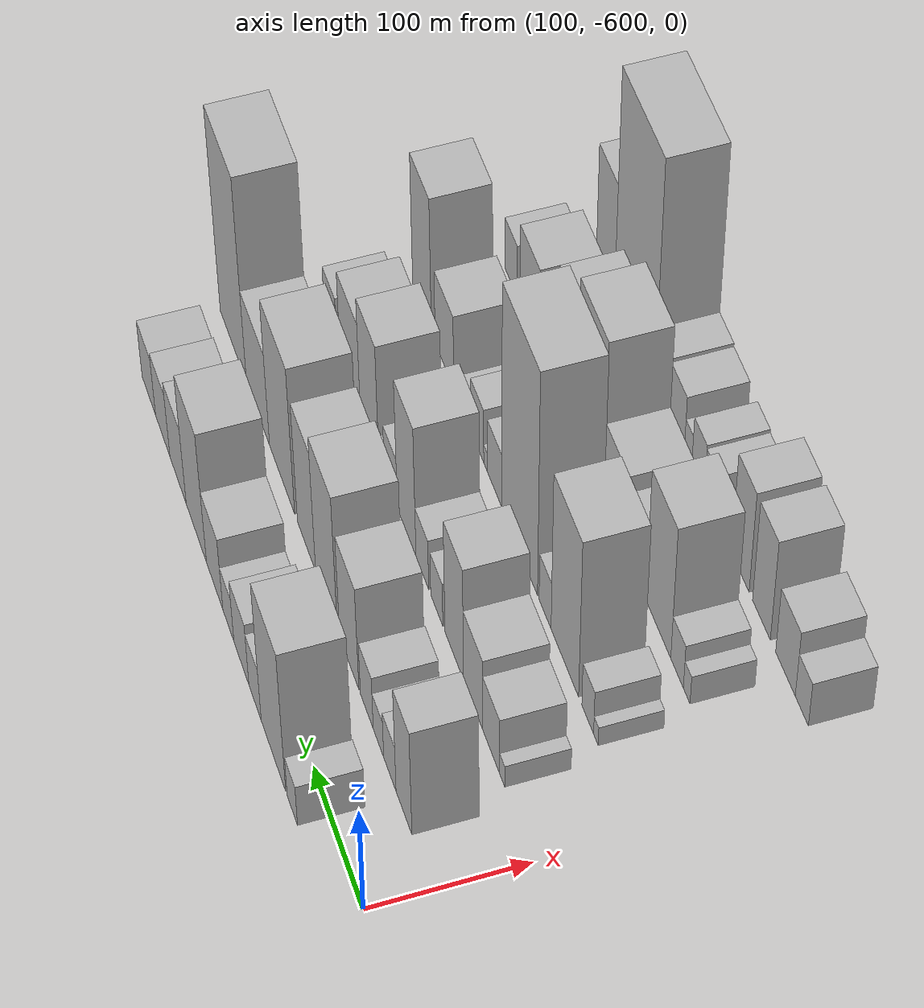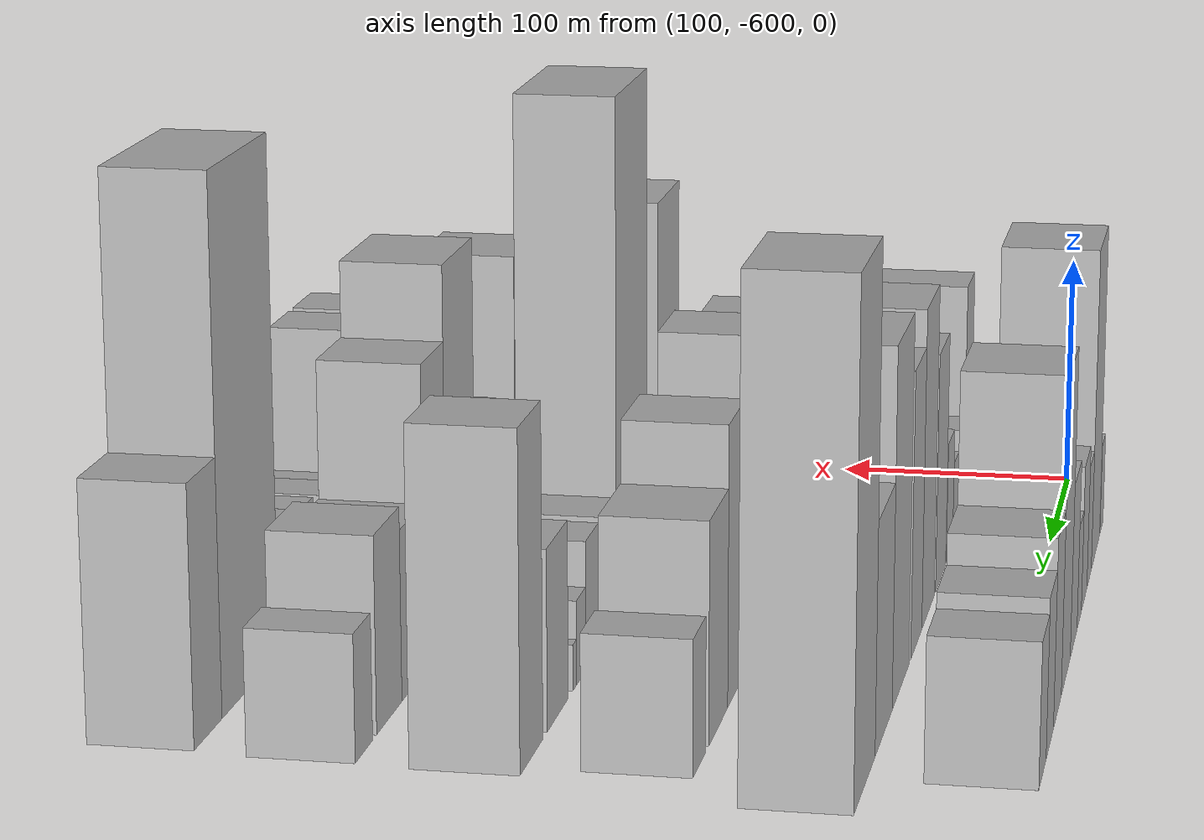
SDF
<sdf version="1.6">
 <world name="default">
  <model name="building_12">
   <static>1</static>
   <pose>100.0000 -524.8343 0 0.000000 0.000000 0.000000</pose>
   <link name="link">
    <pose>0 0 19.50 0 0 0</pose>
    <collision name="collision"><geometry><box><size>40.0000 21.1568 39.0000</size></box></geometry></collision>
    <visual name="visual">
     <cast_shadows>0</cast_shadows>
     <geometry><box><size>40.0000 21.1568 39.0000</size></box></geometry>
     <material>
      <script>
       <uri>model://HANNAS_wall/materials/scripts</uri>
       <uri>model://HANNAS_wall/materials/textures</uri>
       <name>vrc/HANNAS_wall</name>
      </script>
     </material>
    </visual>
   </link>
  </model>
  <model name="building_13">
   <static>1</static>
   <pose>100.0000 -485.7063 0 0.000000 0.000000 0.000000</pose>
   <link name="link">
    <pose>0 0 67.50 0 0 0</pose>
    <collision name="collision"><geometry><box><size>40.0000 51.0993 135.0000</size></box></geometry></collision>
    <visual name="visual">
     <cast_shadows>0</cast_shadows>
     <geometry><box><size>40.0000 51.0993 135.0000</size></box></geometry>
     <material>
      <script>
       <uri>model://HANNAS_wall/materials/scripts</uri>
       <uri>model://HANNAS_wall/materials/textures</uri>
       <name>vrc/HANNAS_wall</name>
      </script>
     </material>
    </visual>
   </link>
  </model>
  <model name="building_14">
   <static>1</static>
   <pose>100.0000 -447.0501 0 0.000000 0.000000 0.000000</pose>
   <link name="link">
    <pose>0 0 25.50 0 0 0</pose>
    <collision name="collision"><geometry><box><size>40.0000 26.2131 51.0000</size></box></geometry></collision>
    <visual name="visual">
     <cast_shadows>0</cast_shadows>
     <geometry><box><size>40.0000 26.2131 51.0000</size></box></geometry>
     <material>
      <script>
       <uri>model://HANNAS_wall/materials/scripts</uri>
       <uri>model://HANNAS_wall/materials/textures</uri>
       <name>vrc/HANNAS_wall</name>
      </script>
     </material>
    </visual>
   </link>
  </model>
  <model name="building_15">
   <static>1</static>
   <pose>100.0000 -417.6876 0 0.000000 0.000000 0.000000</pose>
   <link name="link">
    <pose>0 0 30.00 0 0 0</pose>
    <collision name="collision"><geometry><box><size>40.0000 32.5119 60.0000</size></box></geometry></collision>
    <visual name="visual">
     <cast_shadows>0</cast_shadows>
     <geometry><box><size>40.0000 32.5119 60.0000</size></box></geometry>
     <material>
      <script>
       <uri>model://HANNAS_wall/materials/scripts</uri>
       <uri>model://HANNAS_wall/materials/textures</uri>
       <name>vrc/HANNAS_wall</name>
      </script>
     </material>
    </visual>
   </link>
  </model>
  <model name="building_16">
   <static>1</static>
   <pose>100.0000 -389.3960 0 0.000000 0.000000 0.000000</pose>
   <link name="link">
    <pose>0 0 21.00 0 0 0</pose>
    <collision name="collision"><geometry><box><size>40.0000 24.0713 42.0000</size></box></geometry></collision>
    <visual name="visual">
     <cast_shadows>0</cast_shadows>
     <geometry><box><size>40.0000 24.0713 42.0000</size></box></geometry>
     <material>
      <script>
       <uri>model://HANNAS_wall/materials/scripts</uri>
       <uri>model://HANNAS_wall/materials/textures</uri>
       <name>vrc/HANNAS_wall</name>
      </script>
     </material>
    </visual>
   </link>
  </model>
  <model name="building_17">
   <static>1</static>
   <pose>100.0000 -359.1189 0 0.000000 0.000000 0.000000</pose>
   <link name="link">
    <pose>0 0 34.50 0 0 0</pose>
    <collision name="collision"><geometry><box><size>40.0000 36.4830 69.0000</size></box></geometry></collision>
    <visual name="visual">
     <cast_shadows>0</cast_shadows>
     <geometry><box><size>40.0000 36.4830 69.0000</size></box></geometry>
     <material>
      <script>
       <uri>model://HANNAS_wall/materials/scripts</uri>
       <uri>model://HANNAS_wall/materials/textures</uri>
       <name>vrc/HANNAS_wall</name>
      </script>
     </material>
    </visual>
   </link>
  </model>
  <model name="building_18">
   <static>1</static>
   <pose>100.0000 -317.8565 0 0.000000 0.000000 0.000000</pose>
   <link name="link">
    <pose>0 0 61.50 0 0 0</pose>
    <collision name="collision"><geometry><box><size>40.0000 46.0417 123.0000</size></box></geometry></collision>
    <visual name="visual">
     <cast_shadows>0</cast_shadows>
     <geometry><box><size>40.0000 46.0417 123.0000</size></box></geometry>
     <material>
      <script>
       <uri>model://HANNAS_wall/materials/scripts</uri>
       <uri>model://HANNAS_wall/materials/textures</uri>
       <name>vrc/HANNAS_wall</name>
      </script>
     </material>
    </visual>
   </link>
  </model>
  <model name="building_19">
   <static>1</static>
   <pose>100.0000 -276.0443 0 0.000000 0.000000 0.000000</pose>
   <link name="link">
    <pose>0 0 36.00 0 0 0</pose>
    <collision name="collision"><geometry><box><size>40.0000 37.5828 72.0000</size></box></geometry></collision>
    <visual name="visual">
     <cast_shadows>0</cast_shadows>
     <geometry><box><size>40.0000 37.5828 72.0000</size></box></geometry>
     <material>
      <script>
       <uri>model://HANNAS_wall/materials/scripts</uri>
       <uri>model://HANNAS_wall/materials/textures</uri>
       <name>vrc/HANNAS_wall</name>
      </script>
     </material>
    </visual>
   </link>
  </model>
  <model name="building_20">
   <static>1</static>
   <pose>100.0000 -240.2655 0 0.000000 0.000000 0.000000</pose>
   <link name="link">
    <pose>0 0 30.00 0 0 0</pose>
    <collision name="collision"><geometry><box><size>40.0000 33.9747 60.0000</size></box></geometry></collision>
    <visual name="visual">
     <cast_shadows>0</cast_shadows>
     <geometry><box><size>40.0000 33.9747 60.0000</size></box></geometry>
     <material>
      <script>
       <uri>model://HANNAS_wall/materials/scripts</uri>
       <uri>model://HANNAS_wall/materials/textures</uri>
       <name>vrc/HANNAS_wall</name>
      </script>
     </material>
    </visual>
   </link>
  </model>
  <model name="building_21">
   <static>1</static>
   <pose>100.0000 -207.2316 0 0.000000 0.000000 0.000000</pose>
   <link name="link">
    <pose>0 0 27.00 0 0 0</pose>
    <collision name="collision"><geometry><box><size>40.0000 32.0932 54.0000</size></box></geometry></collision>
    <visual name="visual">
     <cast_shadows>0</cast_shadows>
     <geometry><box><size>40.0000 32.0932 54.0000</size></box></geometry>
     <material>
      <script>
       <uri>model://HANNAS_wall/materials/scripts</uri>
       <uri>model://HANNAS_wall/materials/textures</uri>
       <name>vrc/HANNAS_wall</name>
      </script>
     </material>
    </visual>
   </link>
  </model>
  <model name="building_68">
   <static>1</static>
   <pose>160.0000 -545.9241 0 0.000000 0.000000 0.000000</pose>
   <link name="link">
    <pose>0 0 51.00 0 0 0</pose>
    <collision name="collision"><geometry><box><size>40.0000 30.7753 102.0000</size></box></geometry></collision>
    <visual name="visual">
     <cast_shadows>0</cast_shadows>
     <geometry><box><size>40.0000 30.7753 102.0000</size></box></geometry>
     <material>
      <script>
       <uri>model://HANNAS_wall/materials/scripts</uri>
       <uri>model://HANNAS_wall/materials/textures</uri>
       <name>vrc/HANNAS_wall</name>
      </script>
     </material>
    </visual>
   </link>
  </model>
  <model name="building_69">
   <static>1</static>
   <pose>160.0000 -518.3903 0 0.000000 0.000000 0.000000</pose>
   <link name="link">
    <pose>0 0 22.50 0 0 0</pose>
    <collision name="collision"><geometry><box><size>40.0000 24.2923 45.0000</size></box></geometry></collision>
    <visual name="visual">
     <cast_shadows>0</cast_shadows>
     <geometry><box><size>40.0000 24.2923 45.0000</size></box></geometry>
     <material>
      <script>
       <uri>model://HANNAS_wall/materials/scripts</uri>
       <uri>model://HANNAS_wall/materials/textures</uri>
       <name>vrc/HANNAS_wall</name>
      </script>
     </material>
    </visual>
   </link>
  </model>
  <model name="building_70">
   <static>1</static>
   <pose>160.0000 -495.8701 0 0.000000 0.000000 0.000000</pose>
   <link name="link">
    <pose>0 0 18.00 0 0 0</pose>
    <collision name="collision"><geometry><box><size>40.0000 20.7482 36.0000</size></box></geometry></collision>
    <visual name="visual">
     <cast_shadows>0</cast_shadows>
     <geometry><box><size>40.0000 20.7482 36.0000</size></box></geometry>
     <material>
      <script>
       <uri>model://HANNAS_wall/materials/scripts</uri>
       <uri>model://HANNAS_wall/materials/textures</uri>
       <name>vrc/HANNAS_wall</name>
      </script>
     </material>
    </visual>
   </link>
  </model>
  <model name="building_71">
   <static>1</static>
   <pose>160.0000 -472.6045 0 0.000000 0.000000 0.000000</pose>
   <link name="link">
    <pose>0 0 25.50 0 0 0</pose>
    <collision name="collision"><geometry><box><size>40.0000 25.7830 51.0000</size></box></geometry></collision>
    <visual name="visual">
     <cast_shadows>0</cast_shadows>
     <geometry><box><size>40.0000 25.7830 51.0000</size></box></geometry>
     <material>
      <script>
       <uri>model://HANNAS_wall/materials/scripts</uri>
       <uri>model://HANNAS_wall/materials/textures</uri>
       <name>vrc/HANNAS_wall</name>
      </script>
     </material>
    </visual>
   </link>
  </model>
  <model name="building_72">
   <static>1</static>
   <pose>160.0000 -437.1283 0 0.000000 0.000000 0.000000</pose>
   <link name="link">
    <pose>0 0 49.50 0 0 0</pose>
    <collision name="collision"><geometry><box><size>40.0000 39.1692 99.0000</size></box></geometry></collision>
    <visual name="visual">
     <cast_shadows>0</cast_shadows>
     <geometry><box><size>40.0000 39.1692 99.0000</size></box></geometry>
     <material>
      <script>
       <uri>model://HANNAS_wall/materials/scripts</uri>
       <uri>model://HANNAS_wall/materials/textures</uri>
       <name>vrc/HANNAS_wall</name>
      </script>
     </material>
    </visual>
   </link>
  </model>
  <model name="building_73">
   <static>1</static>
   <pose>160.0000 -389.7357 0 0.000000 0.000000 0.000000</pose>
   <link name="link">
    <pose>0 0 64.50 0 0 0</pose>
    <collision name="collision"><geometry><box><size>40.0000 45.6160 129.0000</size></box></geometry></collision>
    <visual name="visual">
     <cast_shadows>0</cast_shadows>
     <geometry><box><size>40.0000 45.6160 129.0000</size></box></geometry>
     <material>
      <script>
       <uri>model://HANNAS_wall/materials/scripts</uri>
       <uri>model://HANNAS_wall/materials/textures</uri>
       <name>vrc/HANNAS_wall</name>
      </script>
     </material>
    </visual>
   </link>
  </model>
  <model name="building_74">
   <static>1</static>
   <pose>160.0000 -347.4984 0 0.000000 0.000000 0.000000</pose>
   <link name="link">
    <pose>0 0 57.00 0 0 0</pose>
    <collision name="collision"><geometry><box><size>40.0000 38.8587 114.0000</size></box></geometry></collision>
    <visual name="visual">
     <cast_shadows>0</cast_shadows>
     <geometry><box><size>40.0000 38.8587 114.0000</size></box></geometry>
     <material>
      <script>
       <uri>model://HANNAS_wall/materials/scripts</uri>
       <uri>model://HANNAS_wall/materials/textures</uri>
       <name>vrc/HANNAS_wall</name>
      </script>
     </material>
    </visual>
   </link>
  </model>
  <model name="building_75">
   <static>1</static>
   <pose>160.0000 -294.6215 0 0.000000 0.000000 0.000000</pose>
   <link name="link">
    <pose>0 0 69.00 0 0 0</pose>
    <collision name="collision"><geometry><box><size>40.0000 54.8951 138.0000</size></box></geometry></collision>
    <visual name="visual">
     <cast_shadows>0</cast_shadows>
     <geometry><box><size>40.0000 54.8951 138.0000</size></box></geometry>
     <material>
      <script>
       <uri>model://HANNAS_wall/materials/scripts</uri>
       <uri>model://HANNAS_wall/materials/textures</uri>
       <name>vrc/HANNAS_wall</name>
      </script>
     </material>
    </visual>
   </link>
  </model>
  <model name="building_76">
   <static>1</static>
   <pose>160.0000 -241.2307 0 0.000000 0.000000 0.000000</pose>
   <link name="link">
    <pose>0 0 43.50 0 0 0</pose>
    <collision name="collision"><geometry><box><size>40.0000 51.8864 87.0000</size></box></geometry></collision>
    <visual name="visual">
     <cast_shadows>0</cast_shadows>
     <geometry><box><size>40.0000 51.8864 87.0000</size></box></geometry>
     <material>
      <script>
       <uri>model://HANNAS_wall/materials/scripts</uri>
       <uri>model://HANNAS_wall/materials/textures</uri>
       <name>vrc/HANNAS_wall</name>
      </script>
     </material>
    </visual>
   </link>
  </model>
  <model name="building_77">
   <static>1</static>
   <pose>160.0000 -185.1722 0 0.000000 0.000000 0.000000</pose>
   <link name="link">
    <pose>0 0 94.50 0 0 0</pose>
    <collision name="collision"><geometry><box><size>40.0000 60.2305 189.0000</size></box></geometry></collision>
    <visual name="visual">
     <cast_shadows>0</cast_shadows>
     <geometry><box><size>40.0000 60.2305 189.0000</size></box></geometry>
     <material>
      <script>
       <uri>model://HANNAS_wall/materials/scripts</uri>
       <uri>model://HANNAS_wall/materials/textures</uri>
       <name>vrc/HANNAS_wall</name>
      </script>
     </material>
    </visual>
   </link>
  </model>
  <model name="building_125">
   <static>1</static>
   <pose>220.0000 -542.0178 0 0.000000 0.000000 0.000000</pose>
   <link name="link">
    <pose>0 0 10.50 0 0 0</pose>
    <collision name="collision"><geometry><box><size>40.0000 9.5236 21.0000</size></box></geometry></collision>
    <visual name="visual">
     <cast_shadows>0</cast_shadows>
     <geometry><box><size>40.0000 9.5236 21.0000</size></box></geometry>
     <material>
      <script>
       <uri>model://HANNAS_wall/materials/scripts</uri>
       <uri>model://HANNAS_wall/materials/textures</uri>
       <name>vrc/HANNAS_wall</name>
      </script>
     </material>
    </visual>
   </link>
  </model>
  <model name="building_126">
   <static>1</static>
   <pose>220.0000 -521.4622 0 0.000000 0.000000 0.000000</pose>
   <link name="link">
    <pose>0 0 27.00 0 0 0</pose>
    <collision name="collision"><geometry><box><size>40.0000 31.5876 54.0000</size></box></geometry></collision>
    <visual name="visual">
     <cast_shadows>0</cast_shadows>
     <geometry><box><size>40.0000 31.5876 54.0000</size></box></geometry>
     <material>
      <script>
       <uri>model://HANNAS_wall/materials/scripts</uri>
       <uri>model://HANNAS_wall/materials/textures</uri>
       <name>vrc/HANNAS_wall</name>
      </script>
     </material>
    </visual>
   </link>
  </model>
  <model name="building_127">
   <static>1</static>
   <pose>220.0000 -487.2275 0 0.000000 0.000000 0.000000</pose>
   <link name="link">
    <pose>0 0 34.50 0 0 0</pose>
    <collision name="collision"><geometry><box><size>40.0000 36.8818 69.0000</size></box></geometry></collision>
    <visual name="visual">
     <cast_shadows>0</cast_shadows>
     <geometry><box><size>40.0000 36.8818 69.0000</size></box></geometry>
     <material>
      <script>
       <uri>model://HANNAS_wall/materials/scripts</uri>
       <uri>model://HANNAS_wall/materials/textures</uri>
       <name>vrc/HANNAS_wall</name>
      </script>
     </material>
    </visual>
   </link>
  </model>
  <model name="building_128">
   <static>1</static>
   <pose>220.0000 -450.6214 0 0.000000 0.000000 0.000000</pose>
   <link name="link">
    <pose>0 0 54.00 0 0 0</pose>
    <collision name="collision"><geometry><box><size>40.0000 36.3304 108.0000</size></box></geometry></collision>
    <visual name="visual">
     <cast_shadows>0</cast_shadows>
     <geometry><box><size>40.0000 36.3304 108.0000</size></box></geometry>
     <material>
      <script>
       <uri>model://HANNAS_wall/materials/scripts</uri>
       <uri>model://HANNAS_wall/materials/textures</uri>
       <name>vrc/HANNAS_wall</name>
      </script>
     </material>
    </visual>
   </link>
  </model>
  <model name="building_129">
   <static>1</static>
   <pose>220.0000 -416.3922 0 0.000000 0.000000 0.000000</pose>
   <link name="link">
    <pose>0 0 21.00 0 0 0</pose>
    <collision name="collision"><geometry><box><size>40.0000 24.1280 42.0000</size></box></geometry></collision>
    <visual name="visual">
     <cast_shadows>0</cast_shadows>
     <geometry><box><size>40.0000 24.1280 42.0000</size></box></geometry>
     <material>
      <script>
       <uri>model://HANNAS_wall/materials/scripts</uri>
       <uri>model://HANNAS_wall/materials/textures</uri>
       <name>vrc/HANNAS_wall</name>
      </script>
     </material>
    </visual>
   </link>
  </model>
  <model name="building_130">
   <static>1</static>
   <pose>220.0000 -387.5634 0 0.000000 0.000000 0.000000</pose>
   <link name="link">
    <pose>0 0 24.00 0 0 0</pose>
    <collision name="collision"><geometry><box><size>40.0000 25.5296 48.0000</size></box></geometry></collision>
    <visual name="visual">
     <cast_shadows>0</cast_shadows>
     <geometry><box><size>40.0000 25.5296 48.0000</size></box></geometry>
     <material>
      <script>
       <uri>model://HANNAS_wall/materials/scripts</uri>
       <uri>model://HANNAS_wall/materials/textures</uri>
       <name>vrc/HANNAS_wall</name>
      </script>
     </material>
    </visual>
   </link>
  </model>
  <model name="building_131">
   <static>1</static>
   <pose>220.0000 -355.8093 0 0.000000 0.000000 0.000000</pose>
   <link name="link">
    <pose>0 0 61.50 0 0 0</pose>
    <collision name="collision"><geometry><box><size>40.0000 37.9786 123.0000</size></box></geometry></collision>
    <visual name="visual">
     <cast_shadows>0</cast_shadows>
     <geometry><box><size>40.0000 37.9786 123.0000</size></box></geometry>
     <material>
      <script>
       <uri>model://HANNAS_wall/materials/scripts</uri>
       <uri>model://HANNAS_wall/materials/textures</uri>
       <name>vrc/HANNAS_wall</name>
      </script>
     </material>
    </visual>
   </link>
  </model>
  <model name="building_132">
   <static>1</static>
   <pose>220.0000 -323.4053 0 0.000000 0.000000 0.000000</pose>
   <link name="link">
    <pose>0 0 24.00 0 0 0</pose>
    <collision name="collision"><geometry><box><size>40.0000 26.8293 48.0000</size></box></geometry></collision>
    <visual name="visual">
     <cast_shadows>0</cast_shadows>
     <geometry><box><size>40.0000 26.8293 48.0000</size></box></geometry>
     <material>
      <script>
       <uri>model://HANNAS_wall/materials/scripts</uri>
       <uri>model://HANNAS_wall/materials/textures</uri>
       <name>vrc/HANNAS_wall</name>
      </script>
     </material>
    </visual>
   </link>
  </model>
  <model name="building_133">
   <static>1</static>
   <pose>220.0000 -304.1540 0 0.000000 0.000000 0.000000</pose>
   <link name="link">
    <pose>0 0 12.00 0 0 0</pose>
    <collision name="collision"><geometry><box><size>40.0000 11.6734 24.0000</size></box></geometry></collision>
    <visual name="visual">
     <cast_shadows>0</cast_shadows>
     <geometry><box><size>40.0000 11.6734 24.0000</size></box></geometry>
     <material>
      <script>
       <uri>model://HANNAS_wall/materials/scripts</uri>
       <uri>model://HANNAS_wall/materials/textures</uri>
       <name>vrc/HANNAS_wall</name>
      </script>
     </material>
    </visual>
   </link>
  </model>
  <model name="building_134">
   <static>1</static>
   <pose>220.0000 -278.7449 0 0.000000 0.000000 0.000000</pose>
   <link name="link">
    <pose>0 0 54.00 0 0 0</pose>
    <collision name="collision"><geometry><box><size>40.0000 39.1448 108.0000</size></box></geometry></collision>
    <visual name="visual">
     <cast_shadows>0</cast_shadows>
     <geometry><box><size>40.0000 39.1448 108.0000</size></box></geometry>
     <material>
      <script>
       <uri>model://HANNAS_wall/materials/scripts</uri>
       <uri>model://HANNAS_wall/materials/textures</uri>
       <name>vrc/HANNAS_wall</name>
      </script>
     </material>
    </visual>
   </link>
  </model>
  <model name="building_135">
   <static>1</static>
   <pose>220.0000 -237.5979 0 0.000000 0.000000 0.000000</pose>
   <link name="link">
    <pose>0 0 42.00 0 0 0</pose>
    <collision name="collision"><geometry><box><size>40.0000 43.1493 84.0000</size></box></geometry></collision>
    <visual name="visual">
     <cast_shadows>0</cast_shadows>
     <geometry><box><size>40.0000 43.1493 84.0000</size></box></geometry>
     <material>
      <script>
       <uri>model://HANNAS_wall/materials/scripts</uri>
       <uri>model://HANNAS_wall/materials/textures</uri>
       <name>vrc/HANNAS_wall</name>
      </script>
     </material>
    </visual>
   </link>
  </model>
  <model name="building_136">
   <static>1</static>
   <pose>220.0000 -195.4484 0 0.000000 0.000000 0.000000</pose>
   <link name="link">
    <pose>0 0 25.50 0 0 0</pose>
    <collision name="collision"><geometry><box><size>40.0000 27.1496 51.0000</size></box></geometry></collision>
    <visual name="visual">
     <cast_shadows>0</cast_shadows>
     <geometry><box><size>40.0000 27.1496 51.0000</size></box></geometry>
     <material>
      <script>
       <uri>model://HANNAS_wall/materials/scripts</uri>
       <uri>model://HANNAS_wall/materials/textures</uri>
       <name>vrc/HANNAS_wall</name>
      </script>
     </material>
    </visual>
   </link>
  </model>
  <model name="building_182">
   <static>1</static>
   <pose>280.0000 -531.9766 0 0.000000 0.000000 0.000000</pose>
   <link name="link">
    <pose>0 0 9.00 0 0 0</pose>
    <collision name="collision"><geometry><box><size>40.0000 8.3303 18.0000</size></box></geometry></collision>
    <visual name="visual">
     <cast_shadows>0</cast_shadows>
     <geometry><box><size>40.0000 8.3303 18.0000</size></box></geometry>
     <material>
      <script>
       <uri>model://HANNAS_wall/materials/scripts</uri>
       <uri>model://HANNAS_wall/materials/textures</uri>
       <name>vrc/HANNAS_wall</name>
      </script>
     </material>
    </visual>
   </link>
  </model>
  <model name="building_183">
   <static>1</static>
   <pose>280.0000 -517.1595 0 0.000000 0.000000 0.000000</pose>
   <link name="link">
    <pose>0 0 21.00 0 0 0</pose>
    <collision name="collision"><geometry><box><size>40.0000 21.3039 42.0000</size></box></geometry></collision>
    <visual name="visual">
     <cast_shadows>0</cast_shadows>
     <geometry><box><size>40.0000 21.3039 42.0000</size></box></geometry>
     <material>
      <script>
       <uri>model://HANNAS_wall/materials/scripts</uri>
       <uri>model://HANNAS_wall/materials/textures</uri>
       <name>vrc/HANNAS_wall</name>
      </script>
     </material>
    </visual>
   </link>
  </model>
  <model name="building_184">
   <static>1</static>
   <pose>280.0000 -475.0863 0 0.000000 0.000000 0.000000</pose>
   <link name="link">
    <pose>0 0 75.00 0 0 0</pose>
    <collision name="collision"><geometry><box><size>40.0000 50.8425 150.0000</size></box></geometry></collision>
    <visual name="visual">
     <cast_shadows>0</cast_shadows>
     <geometry><box><size>40.0000 50.8425 150.0000</size></box></geometry>
     <material>
      <script>
       <uri>model://HANNAS_wall/materials/scripts</uri>
       <uri>model://HANNAS_wall/materials/textures</uri>
       <name>vrc/HANNAS_wall</name>
      </script>
     </material>
    </visual>
   </link>
  </model>
  <model name="building_185">
   <static>1</static>
   <pose>280.0000 -438.3790 0 0.000000 0.000000 0.000000</pose>
   <link name="link">
    <pose>0 0 22.50 0 0 0</pose>
    <collision name="collision"><geometry><box><size>40.0000 22.5720 45.0000</size></box></geometry></collision>
    <visual name="visual">
     <cast_shadows>0</cast_shadows>
     <geometry><box><size>40.0000 22.5720 45.0000</size></box></geometry>
     <material>
      <script>
       <uri>model://HANNAS_wall/materials/scripts</uri>
       <uri>model://HANNAS_wall/materials/textures</uri>
       <name>vrc/HANNAS_wall</name>
      </script>
     </material>
    </visual>
   </link>
  </model>
  <model name="building_186">
   <static>1</static>
   <pose>280.0000 -389.8259 0 0.000000 0.000000 0.000000</pose>
   <link name="link">
    <pose>0 0 105.00 0 0 0</pose>
    <collision name="collision"><geometry><box><size>40.0000 68.5343 210.0000</size></box></geometry></collision>
    <visual name="visual">
     <cast_shadows>0</cast_shadows>
     <geometry><box><size>40.0000 68.5343 210.0000</size></box></geometry>
     <material>
      <script>
       <uri>model://HANNAS_wall/materials/scripts</uri>
       <uri>model://HANNAS_wall/materials/textures</uri>
       <name>vrc/HANNAS_wall</name>
      </script>
     </material>
    </visual>
   </link>
  </model>
  <model name="building_187">
   <static>1</static>
   <pose>280.0000 -341.3168 0 0.000000 0.000000 0.000000</pose>
   <link name="link">
    <pose>0 0 25.50 0 0 0</pose>
    <collision name="collision"><geometry><box><size>40.0000 28.4838 51.0000</size></box></geometry></collision>
    <visual name="visual">
     <cast_shadows>0</cast_shadows>
     <geometry><box><size>40.0000 28.4838 51.0000</size></box></geometry>
     <material>
      <script>
       <uri>model://HANNAS_wall/materials/scripts</uri>
       <uri>model://HANNAS_wall/materials/textures</uri>
       <name>vrc/HANNAS_wall</name>
      </script>
     </material>
    </visual>
   </link>
  </model>
  <model name="building_188">
   <static>1</static>
   <pose>280.0000 -323.3960 0 0.000000 0.000000 0.000000</pose>
   <link name="link">
    <pose>0 0 9.00 0 0 0</pose>
    <collision name="collision"><geometry><box><size>40.0000 7.3579 18.0000</size></box></geometry></collision>
    <visual name="visual">
     <cast_shadows>0</cast_shadows>
     <geometry><box><size>40.0000 7.3579 18.0000</size></box></geometry>
     <material>
      <script>
       <uri>model://HANNAS_wall/materials/scripts</uri>
       <uri>model://HANNAS_wall/materials/textures</uri>
       <name>vrc/HANNAS_wall</name>
      </script>
     </material>
    </visual>
   </link>
  </model>
  <model name="building_189">
   <static>1</static>
   <pose>280.0000 -306.6684 0 0.000000 0.000000 0.000000</pose>
   <link name="link">
    <pose>0 0 25.50 0 0 0</pose>
    <collision name="collision"><geometry><box><size>40.0000 26.0972 51.0000</size></box></geometry></collision>
    <visual name="visual">
     <cast_shadows>0</cast_shadows>
     <geometry><box><size>40.0000 26.0972 51.0000</size></box></geometry>
     <material>
      <script>
       <uri>model://HANNAS_wall/materials/scripts</uri>
       <uri>model://HANNAS_wall/materials/textures</uri>
       <name>vrc/HANNAS_wall</name>
      </script>
     </material>
    </visual>
   </link>
  </model>
  <model name="building_190">
   <static>1</static>
   <pose>280.0000 -284.6190 0 0.000000 0.000000 0.000000</pose>
   <link name="link">
    <pose>0 0 16.50 0 0 0</pose>
    <collision name="collision"><geometry><box><size>40.0000 18.0017 33.0000</size></box></geometry></collision>
    <visual name="visual">
     <cast_shadows>0</cast_shadows>
     <geometry><box><size>40.0000 18.0017 33.0000</size></box></geometry>
     <material>
      <script>
       <uri>model://HANNAS_wall/materials/scripts</uri>
       <uri>model://HANNAS_wall/materials/textures</uri>
       <name>vrc/HANNAS_wall</name>
      </script>
     </material>
    </visual>
   </link>
  </model>
  <model name="building_191">
   <static>1</static>
   <pose>280.0000 -271.9486 0 0.000000 0.000000 0.000000</pose>
   <link name="link">
    <pose>0 0 9.00 0 0 0</pose>
    <collision name="collision"><geometry><box><size>40.0000 7.3390 18.0000</size></box></geometry></collision>
    <visual name="visual">
     <cast_shadows>0</cast_shadows>
     <geometry><box><size>40.0000 7.3390 18.0000</size></box></geometry>
     <material>
      <script>
       <uri>model://HANNAS_wall/materials/scripts</uri>
       <uri>model://HANNAS_wall/materials/textures</uri>
       <name>vrc/HANNAS_wall</name>
      </script>
     </material>
    </visual>
   </link>
  </model>
  <model name="building_192">
   <static>1</static>
   <pose>280.0000 -240.1046 0 0.000000 0.000000 0.000000</pose>
   <link name="link">
    <pose>0 0 34.50 0 0 0</pose>
    <collision name="collision"><geometry><box><size>40.0000 38.3490 69.0000</size></box></geometry></collision>
    <visual name="visual">
     <cast_shadows>0</cast_shadows>
     <geometry><box><size>40.0000 38.3490 69.0000</size></box></geometry>
     <material>
      <script>
       <uri>model://HANNAS_wall/materials/scripts</uri>
       <uri>model://HANNAS_wall/materials/textures</uri>
       <name>vrc/HANNAS_wall</name>
      </script>
     </material>
    </visual>
   </link>
  </model>
  <model name="building_193">
   <static>1</static>
   <pose>280.0000 -193.2772 0 0.000000 0.000000 0.000000</pose>
   <link name="link">
    <pose>0 0 63.00 0 0 0</pose>
    <collision name="collision"><geometry><box><size>40.0000 39.3057 126.0000</size></box></geometry></collision>
    <visual name="visual">
     <cast_shadows>0</cast_shadows>
     <geometry><box><size>40.0000 39.3057 126.0000</size></box></geometry>
     <material>
      <script>
       <uri>model://HANNAS_wall/materials/scripts</uri>
       <uri>model://HANNAS_wall/materials/textures</uri>
       <name>vrc/HANNAS_wall</name>
      </script>
     </material>
    </visual>
   </link>
  </model>
  <model name="building_233">
   <static>1</static>
   <pose>340.0000 -519.1542 0 0.000000 0.000000 0.000000</pose>
   <link name="link">
    <pose>0 0 13.50 0 0 0</pose>
    <collision name="collision"><geometry><box><size>40.0000 11.6227 27.0000</size></box></geometry></collision>
    <visual name="visual">
     <cast_shadows>0</cast_shadows>
     <geometry><box><size>40.0000 11.6227 27.0000</size></box></geometry>
     <material>
      <script>
       <uri>model://HANNAS_wall/materials/scripts</uri>
       <uri>model://HANNAS_wall/materials/textures</uri>
       <name>vrc/HANNAS_wall</name>
      </script>
     </material>
    </visual>
   </link>
  </model>
  <model name="building_234">
   <static>1</static>
   <pose>340.0000 -502.2806 0 0.000000 0.000000 0.000000</pose>
   <link name="link">
    <pose>0 0 21.00 0 0 0</pose>
    <collision name="collision"><geometry><box><size>40.0000 22.1245 42.0000</size></box></geometry></collision>
    <visual name="visual">
     <cast_shadows>0</cast_shadows>
     <geometry><box><size>40.0000 22.1245 42.0000</size></box></geometry>
     <material>
      <script>
       <uri>model://HANNAS_wall/materials/scripts</uri>
       <uri>model://HANNAS_wall/materials/textures</uri>
       <name>vrc/HANNAS_wall</name>
      </script>
     </material>
    </visual>
   </link>
  </model>
  <model name="building_235">
   <static>1</static>
   <pose>340.0000 -469.0460 0 0.000000 0.000000 0.000000</pose>
   <link name="link">
    <pose>0 0 63.00 0 0 0</pose>
    <collision name="collision"><geometry><box><size>40.0000 44.3447 126.0000</size></box></geometry></collision>
    <visual name="visual">
     <cast_shadows>0</cast_shadows>
     <geometry><box><size>40.0000 44.3447 126.0000</size></box></geometry>
     <material>
      <script>
       <uri>model://HANNAS_wall/materials/scripts</uri>
       <uri>model://HANNAS_wall/materials/textures</uri>
       <name>vrc/HANNAS_wall</name>
      </script>
     </material>
    </visual>
   </link>
  </model>
  <model name="building_236">
   <static>1</static>
   <pose>340.0000 -429.0358 0 0.000000 0.000000 0.000000</pose>
   <link name="link">
    <pose>0 0 30.00 0 0 0</pose>
    <collision name="collision"><geometry><box><size>40.0000 35.6757 60.0000</size></box></geometry></collision>
    <visual name="visual">
     <cast_shadows>0</cast_shadows>
     <geometry><box><size>40.0000 35.6757 60.0000</size></box></geometry>
     <material>
      <script>
       <uri>model://HANNAS_wall/materials/scripts</uri>
       <uri>model://HANNAS_wall/materials/textures</uri>
       <name>vrc/HANNAS_wall</name>
      </script>
     </material>
    </visual>
   </link>
  </model>
  <model name="building_237">
   <static>1</static>
   <pose>340.0000 -390.3393 0 0.000000 0.000000 0.000000</pose>
   <link name="link">
    <pose>0 0 37.50 0 0 0</pose>
    <collision name="collision"><geometry><box><size>40.0000 41.7174 75.0000</size></box></geometry></collision>
    <visual name="visual">
     <cast_shadows>0</cast_shadows>
     <geometry><box><size>40.0000 41.7174 75.0000</size></box></geometry>
     <material>
      <script>
       <uri>model://HANNAS_wall/materials/scripts</uri>
       <uri>model://HANNAS_wall/materials/textures</uri>
       <name>vrc/HANNAS_wall</name>
      </script>
     </material>
    </visual>
   </link>
  </model>
  <model name="building_238">
   <static>1</static>
   <pose>340.0000 -343.8728 0 0.000000 0.000000 0.000000</pose>
   <link name="link">
    <pose>0 0 75.00 0 0 0</pose>
    <collision name="collision"><geometry><box><size>40.0000 51.2154 150.0000</size></box></geometry></collision>
    <visual name="visual">
     <cast_shadows>0</cast_shadows>
     <geometry><box><size>40.0000 51.2154 150.0000</size></box></geometry>
     <material>
      <script>
       <uri>model://HANNAS_wall/materials/scripts</uri>
       <uri>model://HANNAS_wall/materials/textures</uri>
       <name>vrc/HANNAS_wall</name>
      </script>
     </material>
    </visual>
   </link>
  </model>
  <model name="building_239">
   <static>1</static>
   <pose>340.0000 -299.7451 0 0.000000 0.000000 0.000000</pose>
   <link name="link">
    <pose>0 0 60.00 0 0 0</pose>
    <collision name="collision"><geometry><box><size>40.0000 37.0400 120.0000</size></box></geometry></collision>
    <visual name="visual">
     <cast_shadows>0</cast_shadows>
     <geometry><box><size>40.0000 37.0400 120.0000</size></box></geometry>
     <material>
      <script>
       <uri>model://HANNAS_wall/materials/scripts</uri>
       <uri>model://HANNAS_wall/materials/textures</uri>
       <name>vrc/HANNAS_wall</name>
      </script>
     </material>
    </visual>
   </link>
  </model>
  <model name="building_240">
   <static>1</static>
   <pose>340.0000 -263.2210 0 0.000000 0.000000 0.000000</pose>
   <link name="link">
    <pose>0 0 33.00 0 0 0</pose>
    <collision name="collision"><geometry><box><size>40.0000 36.0082 66.0000</size></box></geometry></collision>
    <visual name="visual">
     <cast_shadows>0</cast_shadows>
     <geometry><box><size>40.0000 36.0082 66.0000</size></box></geometry>
     <material>
      <script>
       <uri>model://HANNAS_wall/materials/scripts</uri>
       <uri>model://HANNAS_wall/materials/textures</uri>
       <name>vrc/HANNAS_wall</name>
      </script>
     </material>
    </visual>
   </link>
  </model>
  <model name="building_241">
   <static>1</static>
   <pose>340.0000 -226.0064 0 0.000000 0.000000 0.000000</pose>
   <link name="link">
    <pose>0 0 37.50 0 0 0</pose>
    <collision name="collision"><geometry><box><size>40.0000 38.4212 75.0000</size></box></geometry></collision>
    <visual name="visual">
     <cast_shadows>0</cast_shadows>
     <geometry><box><size>40.0000 38.4212 75.0000</size></box></geometry>
     <material>
      <script>
       <uri>model://HANNAS_wall/materials/scripts</uri>
       <uri>model://HANNAS_wall/materials/textures</uri>
       <name>vrc/HANNAS_wall</name>
      </script>
     </material>
    </visual>
   </link>
  </model>
  <model name="building_242">
   <static>1</static>
   <pose>340.0000 -188.2978 0 0.000000 0.000000 0.000000</pose>
   <link name="link">
    <pose>0 0 24.00 0 0 0</pose>
    <collision name="collision"><geometry><box><size>40.0000 24.9959 48.0000</size></box></geometry></collision>
    <visual name="visual">
     <cast_shadows>0</cast_shadows>
     <geometry><box><size>40.0000 24.9959 48.0000</size></box></geometry>
     <material>
      <script>
       <uri>model://HANNAS_wall/materials/scripts</uri>
       <uri>model://HANNAS_wall/materials/textures</uri>
       <name>vrc/HANNAS_wall</name>
      </script>
     </material>
    </visual>
   </link>
  </model>
  <model name="building_286">
   <static>1</static>
   <pose>400.0000 -549.4459 0 0.000000 0.000000 0.000000</pose>
   <link name="link">
    <pose>0 0 21.00 0 0 0</pose>
    <collision name="collision"><geometry><box><size>40.0000 21.7937 42.0000</size></box></geometry></collision>
    <visual name="visual">
     <cast_shadows>0</cast_shadows>
     <geometry><box><size>40.0000 21.7937 42.0000</size></box></geometry>
     <material>
      <script>
       <uri>model://HANNAS_wall/materials/scripts</uri>
       <uri>model://HANNAS_wall/materials/textures</uri>
       <name>vrc/HANNAS_wall</name>
      </script>
     </material>
    </visual>
   </link>
  </model>
  <model name="building_287">
   <static>1</static>
   <pose>400.0000 -522.1143 0 0.000000 0.000000 0.000000</pose>
   <link name="link">
    <pose>0 0 31.50 0 0 0</pose>
    <collision name="collision"><geometry><box><size>40.0000 32.8696 63.0000</size></box></geometry></collision>
    <visual name="visual">
     <cast_shadows>0</cast_shadows>
     <geometry><box><size>40.0000 32.8696 63.0000</size></box></geometry>
     <material>
      <script>
       <uri>model://HANNAS_wall/materials/scripts</uri>
       <uri>model://HANNAS_wall/materials/textures</uri>
       <name>vrc/HANNAS_wall</name>
      </script>
     </material>
    </visual>
   </link>
  </model>
  <model name="building_288">
   <static>1</static>
   <pose>400.0000 -481.4311 0 0.000000 0.000000 0.000000</pose>
   <link name="link">
    <pose>0 0 48.00 0 0 0</pose>
    <collision name="collision"><geometry><box><size>40.0000 30.4968 96.0000</size></box></geometry></collision>
    <visual name="visual">
     <cast_shadows>0</cast_shadows>
     <geometry><box><size>40.0000 30.4968 96.0000</size></box></geometry>
     <material>
      <script>
       <uri>model://HANNAS_wall/materials/scripts</uri>
       <uri>model://HANNAS_wall/materials/textures</uri>
       <name>vrc/HANNAS_wall</name>
      </script>
     </material>
    </visual>
   </link>
  </model>
  <model name="building_289">
   <static>1</static>
   <pose>400.0000 -444.8470 0 0.000000 0.000000 0.000000</pose>
   <link name="link">
    <pose>0 0 48.00 0 0 0</pose>
    <collision name="collision"><geometry><box><size>40.0000 30.6714 96.0000</size></box></geometry></collision>
    <visual name="visual">
     <cast_shadows>0</cast_shadows>
     <geometry><box><size>40.0000 30.6714 96.0000</size></box></geometry>
     <material>
      <script>
       <uri>model://HANNAS_wall/materials/scripts</uri>
       <uri>model://HANNAS_wall/materials/textures</uri>
       <name>vrc/HANNAS_wall</name>
      </script>
     </material>
    </visual>
   </link>
  </model>
  <model name="building_290">
   <static>1</static>
   <pose>400.0000 -421.0127 0 0.000000 0.000000 0.000000</pose>
   <link name="link">
    <pose>0 0 15.00 0 0 0</pose>
    <collision name="collision"><geometry><box><size>40.0000 16.9972 30.0000</size></box></geometry></collision>
    <visual name="visual">
     <cast_shadows>0</cast_shadows>
     <geometry><box><size>40.0000 16.9972 30.0000</size></box></geometry>
     <material>
      <script>
       <uri>model://HANNAS_wall/materials/scripts</uri>
       <uri>model://HANNAS_wall/materials/textures</uri>
       <name>vrc/HANNAS_wall</name>
      </script>
     </material>
    </visual>
   </link>
  </model>
  <model name="building_291">
   <static>1</static>
   <pose>400.0000 -392.4808 0 0.000000 0.000000 0.000000</pose>
   <link name="link">
    <pose>0 0 21.00 0 0 0</pose>
    <collision name="collision"><geometry><box><size>40.0000 22.0665 42.0000</size></box></geometry></collision>
    <visual name="visual">
     <cast_shadows>0</cast_shadows>
     <geometry><box><size>40.0000 22.0665 42.0000</size></box></geometry>
     <material>
      <script>
       <uri>model://HANNAS_wall/materials/scripts</uri>
       <uri>model://HANNAS_wall/materials/textures</uri>
       <name>vrc/HANNAS_wall</name>
      </script>
     </material>
    </visual>
   </link>
  </model>
  <model name="building_292">
   <static>1</static>
   <pose>400.0000 -370.1924 0 0.000000 0.000000 0.000000</pose>
   <link name="link">
    <pose>0 0 22.50 0 0 0</pose>
    <collision name="collision"><geometry><box><size>40.0000 22.5104 45.0000</size></box></geometry></collision>
    <visual name="visual">
     <cast_shadows>0</cast_shadows>
     <geometry><box><size>40.0000 22.5104 45.0000</size></box></geometry>
     <material>
      <script>
       <uri>model://HANNAS_wall/materials/scripts</uri>
       <uri>model://HANNAS_wall/materials/textures</uri>
       <name>vrc/HANNAS_wall</name>
      </script>
     </material>
    </visual>
   </link>
  </model>
  <model name="building_293">
   <static>1</static>
   <pose>400.0000 -352.2321 0 0.000000 0.000000 0.000000</pose>
   <link name="link">
    <pose>0 0 13.50 0 0 0</pose>
    <collision name="collision"><geometry><box><size>40.0000 13.4103 27.0000</size></box></geometry></collision>
    <visual name="visual">
     <cast_shadows>0</cast_shadows>
     <geometry><box><size>40.0000 13.4103 27.0000</size></box></geometry>
     <material>
      <script>
       <uri>model://HANNAS_wall/materials/scripts</uri>
       <uri>model://HANNAS_wall/materials/textures</uri>
       <name>vrc/HANNAS_wall</name>
      </script>
     </material>
    </visual>
   </link>
  </model>
  <model name="building_294">
   <static>1</static>
   <pose>400.0000 -331.1608 0 0.000000 0.000000 0.000000</pose>
   <link name="link">
    <pose>0 0 24.00 0 0 0</pose>
    <collision name="collision"><geometry><box><size>40.0000 28.7323 48.0000</size></box></geometry></collision>
    <visual name="visual">
     <cast_shadows>0</cast_shadows>
     <geometry><box><size>40.0000 28.7323 48.0000</size></box></geometry>
     <material>
      <script>
       <uri>model://HANNAS_wall/materials/scripts</uri>
       <uri>model://HANNAS_wall/materials/textures</uri>
       <name>vrc/HANNAS_wall</name>
      </script>
     </material>
    </visual>
   </link>
  </model>
  <model name="building_295">
   <static>1</static>
   <pose>400.0000 -303.9074 0 0.000000 0.000000 0.000000</pose>
   <link name="link">
    <pose>0 0 25.50 0 0 0</pose>
    <collision name="collision"><geometry><box><size>40.0000 25.7746 51.0000</size></box></geometry></collision>
    <visual name="visual">
     <cast_shadows>0</cast_shadows>
     <geometry><box><size>40.0000 25.7746 51.0000</size></box></geometry>
     <material>
      <script>
       <uri>model://HANNAS_wall/materials/scripts</uri>
       <uri>model://HANNAS_wall/materials/textures</uri>
       <name>vrc/HANNAS_wall</name>
      </script>
     </material>
    </visual>
   </link>
  </model>
  <model name="building_296">
   <static>1</static>
   <pose>400.0000 -252.5907 0 0.000000 0.000000 0.000000</pose>
   <link name="link">
    <pose>0 0 102.00 0 0 0</pose>
    <collision name="collision"><geometry><box><size>40.0000 76.8587 204.0000</size></box></geometry></collision>
    <visual name="visual">
     <cast_shadows>0</cast_shadows>
     <geometry><box><size>40.0000 76.8587 204.0000</size></box></geometry>
     <material>
      <script>
       <uri>model://HANNAS_wall/materials/scripts</uri>
       <uri>model://HANNAS_wall/materials/textures</uri>
       <name>vrc/HANNAS_wall</name>
      </script>
     </material>
    </visual>
   </link>
  </model>
  <model name="building_297">
   <static>1</static>
   <pose>400.0000 -196.4065 0 0.000000 0.000000 0.000000</pose>
   <link name="link">
    <pose>0 0 49.50 0 0 0</pose>
    <collision name="collision"><geometry><box><size>40.0000 35.5098 99.0000</size></box></geometry></collision>
    <visual name="visual">
     <cast_shadows>0</cast_shadows>
     <geometry><box><size>40.0000 35.5098 99.0000</size></box></geometry>
     <material>
      <script>
       <uri>model://HANNAS_wall/materials/scripts</uri>
       <uri>model://HANNAS_wall/materials/textures</uri>
       <name>vrc/HANNAS_wall</name>
      </script>
     </material>
    </visual>
   </link>
  </model>
 </world>
</sdf>
